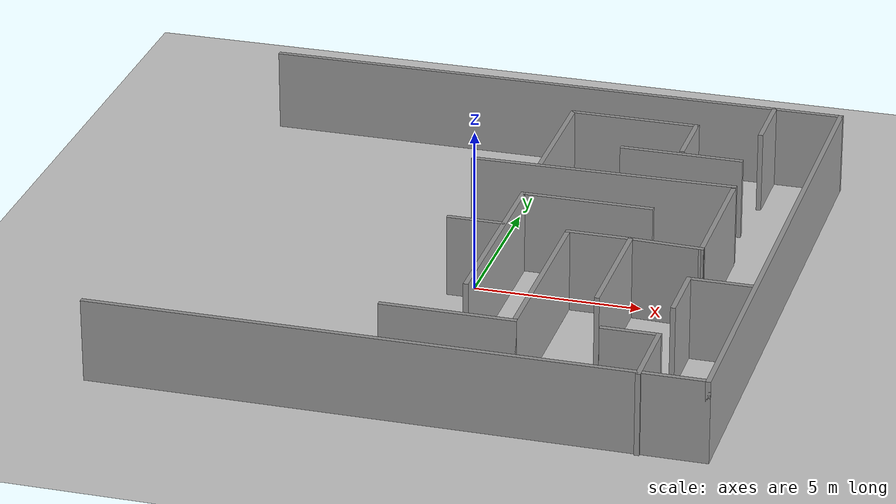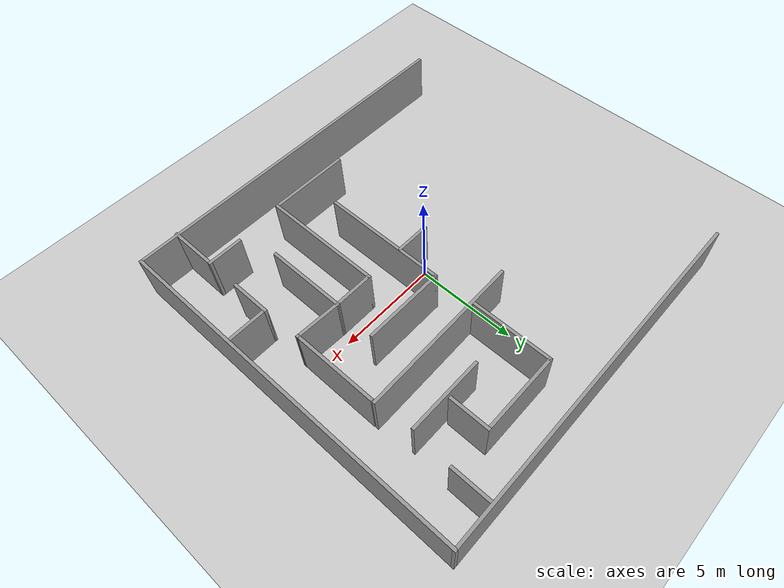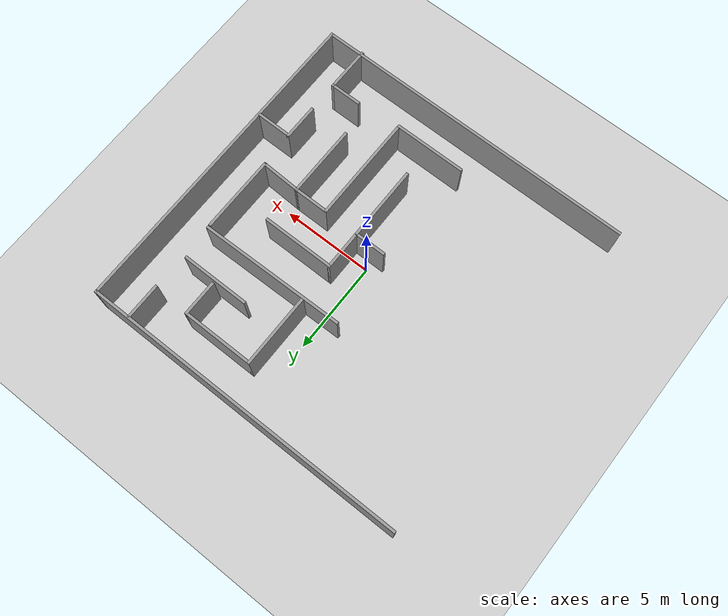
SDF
<sdf version="1.4">
 <world name="default">
  <model name="ground_plane">
   <static>1</static>
   <link name="link">
    <collision name="collision">
     <geometry><plane><normal>0 0 1</normal><size>100 100</size></plane></geometry>
     <surface><friction><ode><mu>100</mu><mu2>50</mu2></ode></friction></surface>
    </collision>
    <visual name="visual">
     <cast_shadows>0</cast_shadows>
     <geometry><plane><normal>0 0 1</normal><size>100 100</size></plane></geometry>
     <material>
      <script><uri>file://media/materials/scripts/gazebo.material</uri><name>Gazebo/Grey</name></script>
     </material>
    </visual>
   </link>
  </model>
  <model name="myMaze_map">
   <link name="Wall_20">
    <pose>-0.135582 -8.3101 0 0 -0 0</pose>
    <visual name="Wall_20_Visual">
     <pose>0 0 1.25 0 -0 0</pose>
     <geometry><box><size>18 0.15 2.5</size></box></geometry>
     <material>
      <script><uri>file://media/materials/scripts/gazebo.material</uri><name>Gazebo/Grey</name></script>
      <ambient>1 1 1 1</ambient>
      <diffuse>0.7 0.7 0.7 1</diffuse>
      <specular>0.01 0.01 0.01 1</specular>
      <emissive>0 0 0 1</emissive>
     </material>
    </visual>
    <collision name="Wall_20_Collision">
     <pose>0 0 1.25 0 -0 0</pose>
     <geometry><box><size>18 0.15 2.5</size></box></geometry>
     <surface>
      <friction>
       <ode><mu>1</mu><mu2>1</mu2><fdir1>0 0 0</fdir1><slip1>0</slip1><slip2>0</slip2></ode>
       <torsional>
        <coefficient>1</coefficient>
        <patch_radius>0</patch_radius>
        <surface_radius>0</surface_radius>
        <use_patch_radius>1</use_patch_radius>
        <ode><slip>0</slip></ode>
       </torsional>
      </friction>
      <bounce><restitution_coefficient>0</restitution_coefficient><threshold>1e+06</threshold></bounce>
      <contact>
       <collide_without_contact>0</collide_without_contact>
       <collide_without_contact_bitmask>1</collide_without_contact_bitmask>
       <collide_bitmask>1</collide_bitmask>
       <ode>
        <soft_cfm>0</soft_cfm>
        <soft_erp>0.2</soft_erp>
        <kp>1e+13</kp>
        <kd>1</kd>
        <max_vel>0.01</max_vel>
        <min_depth>0</min_depth>
       </ode>
       <bullet>
        <split_impulse>1</split_impulse>
        <split_impulse_penetration_threshold>-0.01</split_impulse_penetration_threshold>
        <soft_cfm>0</soft_cfm>
        <soft_erp>0.2</soft_erp>
        <kp>1e+13</kp>
        <kd>1</kd>
       </bullet>
      </contact>
     </surface>
    </collision>
   </link>
   <link name="Wall_21">
    <pose>8.78942 0.614904 0 0 -0 1.5708</pose>
    <visual name="Wall_21_Visual">
     <pose>0 0 1.25 0 -0 0</pose>
     <geometry><box><size>18 0.15 2.5</size></box></geometry>
     <material>
      <script><uri>file://media/materials/scripts/gazebo.material</uri><name>Gazebo/Grey</name></script>
      <ambient>1 1 1 1</ambient>
      <diffuse>0.7 0.7 0.7 1</diffuse>
      <specular>0.01 0.01 0.01 1</specular>
      <emissive>0 0 0 1</emissive>
     </material>
    </visual>
    <collision name="Wall_21_Collision">
     <pose>0 0 1.25 0 -0 0</pose>
     <geometry><box><size>18 0.15 2.5</size></box></geometry>
     <surface>
      <friction>
       <ode><mu>1</mu><mu2>1</mu2><fdir1>0 0 0</fdir1><slip1>0</slip1><slip2>0</slip2></ode>
       <torsional>
        <coefficient>1</coefficient>
        <patch_radius>0</patch_radius>
        <surface_radius>0</surface_radius>
        <use_patch_radius>1</use_patch_radius>
        <ode><slip>0</slip></ode>
       </torsional>
      </friction>
      <bounce><restitution_coefficient>0</restitution_coefficient><threshold>1e+06</threshold></bounce>
      <contact>
       <collide_without_contact>0</collide_without_contact>
       <collide_without_contact_bitmask>1</collide_without_contact_bitmask>
       <collide_bitmask>1</collide_bitmask>
       <ode>
        <soft_cfm>0</soft_cfm>
        <soft_erp>0.2</soft_erp>
        <kp>1e+13</kp>
        <kd>1</kd>
        <max_vel>0.01</max_vel>
        <min_depth>0</min_depth>
       </ode>
       <bullet>
        <split_impulse>1</split_impulse>
        <split_impulse_penetration_threshold>-0.01</split_impulse_penetration_threshold>
        <soft_cfm>0</soft_cfm>
        <soft_erp>0.2</soft_erp>
        <kp>1e+13</kp>
        <kd>1</kd>
       </bullet>
      </contact>
     </surface>
    </collision>
   </link>
   <link name="Wall_22">
    <pose>-0.135582 9.5399 0 0 -0 3.14159</pose>
    <visual name="Wall_22_Visual">
     <pose>0 0 1.25 0 -0 0</pose>
     <geometry><box><size>18 0.15 2.5</size></box></geometry>
     <material>
      <script><uri>file://media/materials/scripts/gazebo.material</uri><name>Gazebo/Grey</name></script>
      <ambient>1 1 1 1</ambient>
      <diffuse>0.7 0.7 0.7 1</diffuse>
      <specular>0.01 0.01 0.01 1</specular>
      <emissive>0 0 0 1</emissive>
     </material>
    </visual>
    <collision name="Wall_22_Collision">
     <pose>0 0 1.25 0 -0 0</pose>
     <geometry><box><size>18 0.15 2.5</size></box></geometry>
     <surface>
      <friction>
       <ode><mu>1</mu><mu2>1</mu2><fdir1>0 0 0</fdir1><slip1>0</slip1><slip2>0</slip2></ode>
       <torsional>
        <coefficient>1</coefficient>
        <patch_radius>0</patch_radius>
        <surface_radius>0</surface_radius>
        <use_patch_radius>1</use_patch_radius>
        <ode><slip>0</slip></ode>
       </torsional>
      </friction>
      <bounce><restitution_coefficient>0</restitution_coefficient><threshold>1e+06</threshold></bounce>
      <contact>
       <collide_without_contact>0</collide_without_contact>
       <collide_without_contact_bitmask>1</collide_without_contact_bitmask>
       <collide_bitmask>1</collide_bitmask>
       <ode>
        <soft_cfm>0</soft_cfm>
        <soft_erp>0.2</soft_erp>
        <kp>1e+13</kp>
        <kd>1</kd>
        <max_vel>0.01</max_vel>
        <min_depth>0</min_depth>
       </ode>
       <bullet>
        <split_impulse>1</split_impulse>
        <split_impulse_penetration_threshold>-0.01</split_impulse_penetration_threshold>
        <soft_cfm>0</soft_cfm>
        <soft_erp>0.2</soft_erp>
        <kp>1e+13</kp>
        <kd>1</kd>
       </bullet>
      </contact>
     </surface>
    </collision>
   </link>
   <link name="Wall_30">
    <pose>0.896581 -6.26071 0 0 -0 0</pose>
    <visual name="Wall_30_Visual">
     <pose>0 0 1.25 0 -0 0</pose>
     <geometry><box><size>4 0.15 2.5</size></box></geometry>
     <material>
      <script><uri>file://media/materials/scripts/gazebo.material</uri><name>Gazebo/Grey</name></script>
      <ambient>1 1 1 1</ambient>
      <diffuse>0.7 0.7 0.7 1</diffuse>
      <specular>0.01 0.01 0.01 1</specular>
      <emissive>0 0 0 1</emissive>
     </material>
    </visual>
    <collision name="Wall_30_Collision">
     <pose>0 0 1.25 0 -0 0</pose>
     <geometry><box><size>4 0.15 2.5</size></box></geometry>
     <surface>
      <friction>
       <ode><mu>1</mu><mu2>1</mu2><fdir1>0 0 0</fdir1><slip1>0</slip1><slip2>0</slip2></ode>
       <torsional>
        <coefficient>1</coefficient>
        <patch_radius>0</patch_radius>
        <surface_radius>0</surface_radius>
        <use_patch_radius>1</use_patch_radius>
        <ode><slip>0</slip></ode>
       </torsional>
      </friction>
      <bounce><restitution_coefficient>0</restitution_coefficient><threshold>1e+06</threshold></bounce>
      <contact>
       <collide_without_contact>0</collide_without_contact>
       <collide_without_contact_bitmask>1</collide_without_contact_bitmask>
       <collide_bitmask>1</collide_bitmask>
       <ode>
        <soft_cfm>0</soft_cfm>
        <soft_erp>0.2</soft_erp>
        <kp>1e+13</kp>
        <kd>1</kd>
        <max_vel>0.01</max_vel>
        <min_depth>0</min_depth>
       </ode>
       <bullet>
        <split_impulse>1</split_impulse>
        <split_impulse_penetration_threshold>-0.01</split_impulse_penetration_threshold>
        <soft_cfm>0</soft_cfm>
        <soft_erp>0.2</soft_erp>
        <kp>1e+13</kp>
        <kd>1</kd>
       </bullet>
      </contact>
     </surface>
    </collision>
   </link>
   <link name="Wall_31">
    <pose>2.82158 -3.33571 0 0 -0 1.5708</pose>
    <visual name="Wall_31_Visual">
     <pose>0 0 1.25 0 -0 0</pose>
     <geometry><box><size>6 0.15 2.5</size></box></geometry>
     <material>
      <script><uri>file://media/materials/scripts/gazebo.material</uri><name>Gazebo/Grey</name></script>
      <ambient>1 1 1 1</ambient>
      <diffuse>0.7 0.7 0.7 1</diffuse>
      <specular>0.01 0.01 0.01 1</specular>
      <emissive>0 0 0 1</emissive>
     </material>
    </visual>
    <collision name="Wall_31_Collision">
     <pose>0 0 1.25 0 -0 0</pose>
     <geometry><box><size>6 0.15 2.5</size></box></geometry>
     <surface>
      <friction>
       <ode><mu>1</mu><mu2>1</mu2><fdir1>0 0 0</fdir1><slip1>0</slip1><slip2>0</slip2></ode>
       <torsional>
        <coefficient>1</coefficient>
        <patch_radius>0</patch_radius>
        <surface_radius>0</surface_radius>
        <use_patch_radius>1</use_patch_radius>
        <ode><slip>0</slip></ode>
       </torsional>
      </friction>
      <bounce><restitution_coefficient>0</restitution_coefficient><threshold>1e+06</threshold></bounce>
      <contact>
       <collide_without_contact>0</collide_without_contact>
       <collide_without_contact_bitmask>1</collide_without_contact_bitmask>
       <collide_bitmask>1</collide_bitmask>
       <ode>
        <soft_cfm>0</soft_cfm>
        <soft_erp>0.2</soft_erp>
        <kp>1e+13</kp>
        <kd>1</kd>
        <max_vel>0.01</max_vel>
        <min_depth>0</min_depth>
       </ode>
       <bullet>
        <split_impulse>1</split_impulse>
        <split_impulse_penetration_threshold>-0.01</split_impulse_penetration_threshold>
        <soft_cfm>0</soft_cfm>
        <soft_erp>0.2</soft_erp>
        <kp>1e+13</kp>
        <kd>1</kd>
       </bullet>
      </contact>
     </surface>
    </collision>
   </link>
   <link name="Wall_32">
    <pose>3.74658 -0.410709 0 0 -0 0</pose>
    <visual name="Wall_32_Visual">
     <pose>0 0 1.25 0 -0 0</pose>
     <geometry><box><size>2 0.15 2.5</size></box></geometry>
     <material>
      <script><uri>file://media/materials/scripts/gazebo.material</uri><name>Gazebo/Grey</name></script>
      <ambient>1 1 1 1</ambient>
      <diffuse>0.7 0.7 0.7 1</diffuse>
      <specular>0.01 0.01 0.01 1</specular>
      <emissive>0 0 0 1</emissive>
     </material>
    </visual>
    <collision name="Wall_32_Collision">
     <pose>0 0 1.25 0 -0 0</pose>
     <geometry><box><size>2 0.15 2.5</size></box></geometry>
     <surface>
      <friction>
       <ode><mu>1</mu><mu2>1</mu2><fdir1>0 0 0</fdir1><slip1>0</slip1><slip2>0</slip2></ode>
       <torsional>
        <coefficient>1</coefficient>
        <patch_radius>0</patch_radius>
        <surface_radius>0</surface_radius>
        <use_patch_radius>1</use_patch_radius>
        <ode><slip>0</slip></ode>
       </torsional>
      </friction>
      <bounce><restitution_coefficient>0</restitution_coefficient><threshold>1e+06</threshold></bounce>
      <contact>
       <collide_without_contact>0</collide_without_contact>
       <collide_without_contact_bitmask>1</collide_without_contact_bitmask>
       <collide_bitmask>1</collide_bitmask>
       <ode>
        <soft_cfm>0</soft_cfm>
        <soft_erp>0.2</soft_erp>
        <kp>1e+13</kp>
        <kd>1</kd>
        <max_vel>0.01</max_vel>
        <min_depth>0</min_depth>
       </ode>
       <bullet>
        <split_impulse>1</split_impulse>
        <split_impulse_penetration_threshold>-0.01</split_impulse_penetration_threshold>
        <soft_cfm>0</soft_cfm>
        <soft_erp>0.2</soft_erp>
        <kp>1e+13</kp>
        <kd>1</kd>
       </bullet>
      </contact>
     </surface>
    </collision>
   </link>
   <link name="Wall_33">
    <pose>4.67158 -2.33571 0 0 0 -1.5708</pose>
    <visual name="Wall_33_Visual">
     <pose>0 0 1.25 0 -0 0</pose>
     <geometry><box><size>4 0.15 2.5</size></box></geometry>
     <material>
      <script><uri>file://media/materials/scripts/gazebo.material</uri><name>Gazebo/Grey</name></script>
      <ambient>1 1 1 1</ambient>
      <diffuse>0.7 0.7 0.7 1</diffuse>
      <specular>0.01 0.01 0.01 1</specular>
      <emissive>0 0 0 1</emissive>
     </material>
    </visual>
    <collision name="Wall_33_Collision">
     <pose>0 0 1.25 0 -0 0</pose>
     <geometry><box><size>4 0.15 2.5</size></box></geometry>
     <surface>
      <friction>
       <ode><mu>1</mu><mu2>1</mu2><fdir1>0 0 0</fdir1><slip1>0</slip1><slip2>0</slip2></ode>
       <torsional>
        <coefficient>1</coefficient>
        <patch_radius>0</patch_radius>
        <surface_radius>0</surface_radius>
        <use_patch_radius>1</use_patch_radius>
        <ode><slip>0</slip></ode>
       </torsional>
      </friction>
      <bounce><restitution_coefficient>0</restitution_coefficient><threshold>1e+06</threshold></bounce>
      <contact>
       <collide_without_contact>0</collide_without_contact>
       <collide_without_contact_bitmask>1</collide_without_contact_bitmask>
       <collide_bitmask>1</collide_bitmask>
       <ode>
        <soft_cfm>0</soft_cfm>
        <soft_erp>0.2</soft_erp>
        <kp>1e+13</kp>
        <kd>1</kd>
        <max_vel>0.01</max_vel>
        <min_depth>0</min_depth>
       </ode>
       <bullet>
        <split_impulse>1</split_impulse>
        <split_impulse_penetration_threshold>-0.01</split_impulse_penetration_threshold>
        <soft_cfm>0</soft_cfm>
        <soft_erp>0.2</soft_erp>
        <kp>1e+13</kp>
        <kd>1</kd>
       </bullet>
      </contact>
     </surface>
    </collision>
   </link>
   <link name="Wall_37">
    <pose>6.86042 -7.20036 0 0 -0 1.5708</pose>
    <visual name="Wall_37_Visual">
     <pose>0 0 1.25 0 -0 0</pose>
     <geometry><box><size>2.5 0.15 2.5</size></box></geometry>
     <material>
      <script><uri>file://media/materials/scripts/gazebo.material</uri><name>Gazebo/Grey</name></script>
      <ambient>1 1 1 1</ambient>
      <diffuse>0.7 0.7 0.7 1</diffuse>
      <specular>0.01 0.01 0.01 1</specular>
      <emissive>0 0 0 1</emissive>
     </material>
    </visual>
    <collision name="Wall_37_Collision">
     <pose>0 0 1.25 0 -0 0</pose>
     <geometry><box><size>2.5 0.15 2.5</size></box></geometry>
     <surface>
      <friction>
       <ode><mu>1</mu><mu2>1</mu2><fdir1>0 0 0</fdir1><slip1>0</slip1><slip2>0</slip2></ode>
       <torsional>
        <coefficient>1</coefficient>
        <patch_radius>0</patch_radius>
        <surface_radius>0</surface_radius>
        <use_patch_radius>1</use_patch_radius>
        <ode><slip>0</slip></ode>
       </torsional>
      </friction>
      <bounce><restitution_coefficient>0</restitution_coefficient><threshold>1e+06</threshold></bounce>
      <contact>
       <collide_without_contact>0</collide_without_contact>
       <collide_without_contact_bitmask>1</collide_without_contact_bitmask>
       <collide_bitmask>1</collide_bitmask>
       <ode>
        <soft_cfm>0</soft_cfm>
        <soft_erp>0.2</soft_erp>
        <kp>1e+13</kp>
        <kd>1</kd>
        <max_vel>0.01</max_vel>
        <min_depth>0</min_depth>
       </ode>
       <bullet>
        <split_impulse>1</split_impulse>
        <split_impulse_penetration_threshold>-0.01</split_impulse_penetration_threshold>
        <soft_cfm>0</soft_cfm>
        <soft_erp>0.2</soft_erp>
        <kp>1e+13</kp>
        <kd>1</kd>
       </bullet>
      </contact>
     </surface>
    </collision>
   </link>
   <link name="Wall_38">
    <pose>6.06042 -6.02536 0 0 -0 3.14159</pose>
    <visual name="Wall_38_Visual">
     <pose>0 0 1.25 0 -0 0</pose>
     <geometry><box><size>1.75 0.15 2.5</size></box></geometry>
     <material>
      <script><uri>file://media/materials/scripts/gazebo.material</uri><name>Gazebo/Grey</name></script>
      <ambient>1 1 1 1</ambient>
      <diffuse>0.7 0.7 0.7 1</diffuse>
      <specular>0.01 0.01 0.01 1</specular>
      <emissive>0 0 0 1</emissive>
     </material>
    </visual>
    <collision name="Wall_38_Collision">
     <pose>0 0 1.25 0 -0 0</pose>
     <geometry><box><size>1.75 0.15 2.5</size></box></geometry>
     <surface>
      <friction>
       <ode><mu>1</mu><mu2>1</mu2><fdir1>0 0 0</fdir1><slip1>0</slip1><slip2>0</slip2></ode>
       <torsional>
        <coefficient>1</coefficient>
        <patch_radius>0</patch_radius>
        <surface_radius>0</surface_radius>
        <use_patch_radius>1</use_patch_radius>
        <ode><slip>0</slip></ode>
       </torsional>
      </friction>
      <bounce><restitution_coefficient>0</restitution_coefficient><threshold>1e+06</threshold></bounce>
      <contact>
       <collide_without_contact>0</collide_without_contact>
       <collide_without_contact_bitmask>1</collide_without_contact_bitmask>
       <collide_bitmask>1</collide_bitmask>
       <ode>
        <soft_cfm>0</soft_cfm>
        <soft_erp>0.2</soft_erp>
        <kp>1e+13</kp>
        <kd>1</kd>
        <max_vel>0.01</max_vel>
        <min_depth>0</min_depth>
       </ode>
       <bullet>
        <split_impulse>1</split_impulse>
        <split_impulse_penetration_threshold>-0.01</split_impulse_penetration_threshold>
        <soft_cfm>0</soft_cfm>
        <soft_erp>0.2</soft_erp>
        <kp>1e+13</kp>
        <kd>1</kd>
       </bullet>
      </contact>
     </surface>
    </collision>
   </link>
   <link name="Wall_40">
    <pose>6.86042 -3.36434 0 0 -0 1.5708</pose>
    <visual name="Wall_40_Visual">
     <pose>0 0 1.25 0 -0 0</pose>
     <geometry><box><size>2 0.15 2.5</size></box></geometry>
     <material>
      <script><uri>file://media/materials/scripts/gazebo.material</uri><name>Gazebo/Grey</name></script>
      <ambient>1 1 1 1</ambient>
      <diffuse>0.7 0.7 0.7 1</diffuse>
      <specular>0.01 0.01 0.01 1</specular>
      <emissive>0 0 0 1</emissive>
     </material>
    </visual>
    <collision name="Wall_40_Collision">
     <pose>0 0 1.25 0 -0 0</pose>
     <geometry><box><size>2 0.15 2.5</size></box></geometry>
     <surface>
      <friction>
       <ode><mu>1</mu><mu2>1</mu2><fdir1>0 0 0</fdir1><slip1>0</slip1><slip2>0</slip2></ode>
       <torsional>
        <coefficient>1</coefficient>
        <patch_radius>0</patch_radius>
        <surface_radius>0</surface_radius>
        <use_patch_radius>1</use_patch_radius>
        <ode><slip>0</slip></ode>
       </torsional>
      </friction>
      <bounce><restitution_coefficient>0</restitution_coefficient><threshold>1e+06</threshold></bounce>
      <contact>
       <collide_without_contact>0</collide_without_contact>
       <collide_without_contact_bitmask>1</collide_without_contact_bitmask>
       <collide_bitmask>1</collide_bitmask>
       <ode>
        <soft_cfm>0</soft_cfm>
        <soft_erp>0.2</soft_erp>
        <kp>1e+13</kp>
        <kd>1</kd>
        <max_vel>0.01</max_vel>
        <min_depth>0</min_depth>
       </ode>
       <bullet>
        <split_impulse>1</split_impulse>
        <split_impulse_penetration_threshold>-0.01</split_impulse_penetration_threshold>
        <soft_cfm>0</soft_cfm>
        <soft_erp>0.2</soft_erp>
        <kp>1e+13</kp>
        <kd>1</kd>
       </bullet>
      </contact>
     </surface>
    </collision>
   </link>
   <link name="Wall_41">
    <pose>7.78542 -2.43934 0 0 -0 0</pose>
    <visual name="Wall_41_Visual">
     <pose>0 0 1.25 0 -0 0</pose>
     <geometry><box><size>2 0.15 2.5</size></box></geometry>
     <material>
      <script><uri>file://media/materials/scripts/gazebo.material</uri><name>Gazebo/Grey</name></script>
      <ambient>1 1 1 1</ambient>
      <diffuse>0.7 0.7 0.7 1</diffuse>
      <specular>0.01 0.01 0.01 1</specular>
      <emissive>0 0 0 1</emissive>
     </material>
    </visual>
    <collision name="Wall_41_Collision">
     <pose>0 0 1.25 0 -0 0</pose>
     <geometry><box><size>2 0.15 2.5</size></box></geometry>
     <surface>
      <friction>
       <ode><mu>1</mu><mu2>1</mu2><fdir1>0 0 0</fdir1><slip1>0</slip1><slip2>0</slip2></ode>
       <torsional>
        <coefficient>1</coefficient>
        <patch_radius>0</patch_radius>
        <surface_radius>0</surface_radius>
        <use_patch_radius>1</use_patch_radius>
        <ode><slip>0</slip></ode>
       </torsional>
      </friction>
      <bounce><restitution_coefficient>0</restitution_coefficient><threshold>1e+06</threshold></bounce>
      <contact>
       <collide_without_contact>0</collide_without_contact>
       <collide_without_contact_bitmask>1</collide_without_contact_bitmask>
       <collide_bitmask>1</collide_bitmask>
       <ode>
        <soft_cfm>0</soft_cfm>
        <soft_erp>0.2</soft_erp>
        <kp>1e+13</kp>
        <kd>1</kd>
        <max_vel>0.01</max_vel>
        <min_depth>0</min_depth>
       </ode>
       <bullet>
        <split_impulse>1</split_impulse>
        <split_impulse_penetration_threshold>-0.01</split_impulse_penetration_threshold>
        <soft_cfm>0</soft_cfm>
        <soft_erp>0.2</soft_erp>
        <kp>1e+13</kp>
        <kd>1</kd>
       </bullet>
      </contact>
     </surface>
    </collision>
   </link>
   <link name="Wall_57">
    <pose>2.82125 3.72644 0 0 -0 0.01538</pose>
    <visual name="Wall_57_Visual">
     <pose>0 0 1.25 0 -0 0</pose>
     <geometry><box><size>8.04139 0.15 2.5</size></box></geometry>
     <material>
      <script><uri>file://media/materials/scripts/gazebo.material</uri><name>Gazebo/Grey</name></script>
      <ambient>1 1 1 1</ambient>
      <diffuse>0.7 0.7 0.7 1</diffuse>
      <specular>0.01 0.01 0.01 1</specular>
      <emissive>0 0 0 1</emissive>
     </material>
    </visual>
    <collision name="Wall_57_Collision">
     <pose>0 0 1.25 0 -0 0</pose>
     <geometry><box><size>8.04139 0.15 2.5</size></box></geometry>
     <surface>
      <friction>
       <ode><mu>1</mu><mu2>1</mu2><fdir1>0 0 0</fdir1><slip1>0</slip1><slip2>0</slip2></ode>
       <torsional>
        <coefficient>1</coefficient>
        <patch_radius>0</patch_radius>
        <surface_radius>0</surface_radius>
        <use_patch_radius>1</use_patch_radius>
        <ode><slip>0</slip></ode>
       </torsional>
      </friction>
      <bounce><restitution_coefficient>0</restitution_coefficient><threshold>1e+06</threshold></bounce>
      <contact>
       <collide_without_contact>0</collide_without_contact>
       <collide_without_contact_bitmask>1</collide_without_contact_bitmask>
       <collide_bitmask>1</collide_bitmask>
       <ode>
        <soft_cfm>0</soft_cfm>
        <soft_erp>0.2</soft_erp>
        <kp>1e+13</kp>
        <kd>1</kd>
        <max_vel>0.01</max_vel>
        <min_depth>0</min_depth>
       </ode>
       <bullet>
        <split_impulse>1</split_impulse>
        <split_impulse_penetration_threshold>-0.01</split_impulse_penetration_threshold>
        <soft_cfm>0</soft_cfm>
        <soft_erp>0.2</soft_erp>
        <kp>1e+13</kp>
        <kd>1</kd>
       </bullet>
      </contact>
     </surface>
    </collision>
   </link>
   <link name="Wall_60">
    <pose>6.77951 1.5495 0 0 0 -1.5708</pose>
    <visual name="Wall_60_Visual">
     <pose>0 0 1.25 0 -0 0</pose>
     <geometry><box><size>4.25 0.15 2.5</size></box></geometry>
     <material>
      <script><uri>file://media/materials/scripts/gazebo.material</uri><name>Gazebo/Grey</name></script>
      <ambient>1 1 1 1</ambient>
      <diffuse>0.7 0.7 0.7 1</diffuse>
      <specular>0.01 0.01 0.01 1</specular>
      <emissive>0 0 0 1</emissive>
     </material>
    </visual>
    <collision name="Wall_60_Collision">
     <pose>0 0 1.25 0 -0 0</pose>
     <geometry><box><size>4.25 0.15 2.5</size></box></geometry>
     <surface>
      <friction>
       <ode><mu>1</mu><mu2>1</mu2><fdir1>0 0 0</fdir1><slip1>0</slip1><slip2>0</slip2></ode>
       <torsional>
        <coefficient>1</coefficient>
        <patch_radius>0</patch_radius>
        <surface_radius>0</surface_radius>
        <use_patch_radius>1</use_patch_radius>
        <ode><slip>0</slip></ode>
       </torsional>
      </friction>
      <bounce><restitution_coefficient>0</restitution_coefficient><threshold>1e+06</threshold></bounce>
      <contact>
       <collide_without_contact>0</collide_without_contact>
       <collide_without_contact_bitmask>1</collide_without_contact_bitmask>
       <collide_bitmask>1</collide_bitmask>
       <ode>
        <soft_cfm>0</soft_cfm>
        <soft_erp>0.2</soft_erp>
        <kp>1e+13</kp>
        <kd>1</kd>
        <max_vel>0.01</max_vel>
        <min_depth>0</min_depth>
       </ode>
       <bullet>
        <split_impulse>1</split_impulse>
        <split_impulse_penetration_threshold>-0.01</split_impulse_penetration_threshold>
        <soft_cfm>0</soft_cfm>
        <soft_erp>0.2</soft_erp>
        <kp>1e+13</kp>
        <kd>1</kd>
       </bullet>
      </contact>
     </surface>
    </collision>
   </link>
   <link name="Wall_61">
    <pose>5.72554 -0.455607 0 0 -0 3.09902</pose>
    <visual name="Wall_61_Visual">
     <pose>0 0 1.25 0 -0 0</pose>
     <geometry><box><size>2.25984 0.15 2.5</size></box></geometry>
     <material>
      <script><uri>file://media/materials/scripts/gazebo.material</uri><name>Gazebo/Grey</name></script>
      <ambient>1 1 1 1</ambient>
      <diffuse>0.7 0.7 0.7 1</diffuse>
      <specular>0.01 0.01 0.01 1</specular>
      <emissive>0 0 0 1</emissive>
     </material>
    </visual>
    <collision name="Wall_61_Collision">
     <pose>0 0 1.25 0 -0 0</pose>
     <geometry><box><size>2.25984 0.15 2.5</size></box></geometry>
     <surface>
      <friction>
       <ode><mu>1</mu><mu2>1</mu2><fdir1>0 0 0</fdir1><slip1>0</slip1><slip2>0</slip2></ode>
       <torsional>
        <coefficient>1</coefficient>
        <patch_radius>0</patch_radius>
        <surface_radius>0</surface_radius>
        <use_patch_radius>1</use_patch_radius>
        <ode><slip>0</slip></ode>
       </torsional>
      </friction>
      <bounce><restitution_coefficient>0</restitution_coefficient><threshold>1e+06</threshold></bounce>
      <contact>
       <collide_without_contact>0</collide_without_contact>
       <collide_without_contact_bitmask>1</collide_without_contact_bitmask>
       <collide_bitmask>1</collide_bitmask>
       <ode>
        <soft_cfm>0</soft_cfm>
        <soft_erp>0.2</soft_erp>
        <kp>1e+13</kp>
        <kd>1</kd>
        <max_vel>0.01</max_vel>
        <min_depth>0</min_depth>
       </ode>
       <bullet>
        <split_impulse>1</split_impulse>
        <split_impulse_penetration_threshold>-0.01</split_impulse_penetration_threshold>
        <soft_cfm>0</soft_cfm>
        <soft_erp>0.2</soft_erp>
        <kp>1e+13</kp>
        <kd>1</kd>
       </bullet>
      </contact>
     </surface>
    </collision>
   </link>
   <link name="Wall_71">
    <pose>0.872993 5.76723 0 0 -0 1.5708</pose>
    <visual name="Wall_71_Visual">
     <pose>0 0 1.25 0 -0 0</pose>
     <geometry><box><size>4 0.15 2.5</size></box></geometry>
     <material>
      <script><uri>file://media/materials/scripts/gazebo.material</uri><name>Gazebo/Grey</name></script>
      <ambient>1 1 1 1</ambient>
      <diffuse>0.7 0.7 0.7 1</diffuse>
      <specular>0.01 0.01 0.01 1</specular>
      <emissive>0 0 0 1</emissive>
     </material>
    </visual>
    <collision name="Wall_71_Collision">
     <pose>0 0 1.25 0 -0 0</pose>
     <geometry><box><size>4 0.15 2.5</size></box></geometry>
     <surface>
      <friction>
       <ode><mu>1</mu><mu2>1</mu2><fdir1>0 0 0</fdir1><slip1>0</slip1><slip2>0</slip2></ode>
       <torsional>
        <coefficient>1</coefficient>
        <patch_radius>0</patch_radius>
        <surface_radius>0</surface_radius>
        <use_patch_radius>1</use_patch_radius>
        <ode><slip>0</slip></ode>
       </torsional>
      </friction>
      <bounce><restitution_coefficient>0</restitution_coefficient><threshold>1e+06</threshold></bounce>
      <contact>
       <collide_without_contact>0</collide_without_contact>
       <collide_without_contact_bitmask>1</collide_without_contact_bitmask>
       <collide_bitmask>1</collide_bitmask>
       <ode>
        <soft_cfm>0</soft_cfm>
        <soft_erp>0.2</soft_erp>
        <kp>1e+13</kp>
        <kd>1</kd>
        <max_vel>0.01</max_vel>
        <min_depth>0</min_depth>
       </ode>
       <bullet>
        <split_impulse>1</split_impulse>
        <split_impulse_penetration_threshold>-0.01</split_impulse_penetration_threshold>
        <soft_cfm>0</soft_cfm>
        <soft_erp>0.2</soft_erp>
        <kp>1e+13</kp>
        <kd>1</kd>
       </bullet>
      </contact>
     </surface>
    </collision>
   </link>
   <link name="Wall_72">
    <pose>2.79799 7.69223 0 0 -0 0</pose>
    <visual name="Wall_72_Visual">
     <pose>0 0 1.25 0 -0 0</pose>
     <geometry><box><size>4 0.15 2.5</size></box></geometry>
     <material>
      <script><uri>file://media/materials/scripts/gazebo.material</uri><name>Gazebo/Grey</name></script>
      <ambient>1 1 1 1</ambient>
      <diffuse>0.7 0.7 0.7 1</diffuse>
      <specular>0.01 0.01 0.01 1</specular>
      <emissive>0 0 0 1</emissive>
     </material>
    </visual>
    <collision name="Wall_72_Collision">
     <pose>0 0 1.25 0 -0 0</pose>
     <geometry><box><size>4 0.15 2.5</size></box></geometry>
     <surface>
      <friction>
       <ode><mu>1</mu><mu2>1</mu2><fdir1>0 0 0</fdir1><slip1>0</slip1><slip2>0</slip2></ode>
       <torsional>
        <coefficient>1</coefficient>
        <patch_radius>0</patch_radius>
        <surface_radius>0</surface_radius>
        <use_patch_radius>1</use_patch_radius>
        <ode><slip>0</slip></ode>
       </torsional>
      </friction>
      <bounce><restitution_coefficient>0</restitution_coefficient><threshold>1e+06</threshold></bounce>
      <contact>
       <collide_without_contact>0</collide_without_contact>
       <collide_without_contact_bitmask>1</collide_without_contact_bitmask>
       <collide_bitmask>1</collide_bitmask>
       <ode>
        <soft_cfm>0</soft_cfm>
        <soft_erp>0.2</soft_erp>
        <kp>1e+13</kp>
        <kd>1</kd>
        <max_vel>0.01</max_vel>
        <min_depth>0</min_depth>
       </ode>
       <bullet>
        <split_impulse>1</split_impulse>
        <split_impulse_penetration_threshold>-0.01</split_impulse_penetration_threshold>
        <soft_cfm>0</soft_cfm>
        <soft_erp>0.2</soft_erp>
        <kp>1e+13</kp>
        <kd>1</kd>
       </bullet>
      </contact>
     </surface>
    </collision>
   </link>
   <link name="Wall_73">
    <pose>4.72299 6.76723 0 0 0 -1.5708</pose>
    <visual name="Wall_73_Visual">
     <pose>0 0 1.25 0 -0 0</pose>
     <geometry><box><size>2 0.15 2.5</size></box></geometry>
     <material>
      <script><uri>file://media/materials/scripts/gazebo.material</uri><name>Gazebo/Grey</name></script>
      <ambient>1 1 1 1</ambient>
      <diffuse>0.7 0.7 0.7 1</diffuse>
      <specular>0.01 0.01 0.01 1</specular>
      <emissive>0 0 0 1</emissive>
     </material>
    </visual>
    <collision name="Wall_73_Collision">
     <pose>0 0 1.25 0 -0 0</pose>
     <geometry><box><size>2 0.15 2.5</size></box></geometry>
     <surface>
      <friction>
       <ode><mu>1</mu><mu2>1</mu2><fdir1>0 0 0</fdir1><slip1>0</slip1><slip2>0</slip2></ode>
       <torsional>
        <coefficient>1</coefficient>
        <patch_radius>0</patch_radius>
        <surface_radius>0</surface_radius>
        <use_patch_radius>1</use_patch_radius>
        <ode><slip>0</slip></ode>
       </torsional>
      </friction>
      <bounce><restitution_coefficient>0</restitution_coefficient><threshold>1e+06</threshold></bounce>
      <contact>
       <collide_without_contact>0</collide_without_contact>
       <collide_without_contact_bitmask>1</collide_without_contact_bitmask>
       <collide_bitmask>1</collide_bitmask>
       <ode>
        <soft_cfm>0</soft_cfm>
        <soft_erp>0.2</soft_erp>
        <kp>1e+13</kp>
        <kd>1</kd>
        <max_vel>0.01</max_vel>
        <min_depth>0</min_depth>
       </ode>
       <bullet>
        <split_impulse>1</split_impulse>
        <split_impulse_penetration_threshold>-0.01</split_impulse_penetration_threshold>
        <soft_cfm>0</soft_cfm>
        <soft_erp>0.2</soft_erp>
        <kp>1e+13</kp>
        <kd>1</kd>
       </bullet>
      </contact>
     </surface>
    </collision>
   </link>
   <link name="Wall_75">
    <pose>4.7539 5.5995 0 0 -0 0</pose>
    <visual name="Wall_75_Visual">
     <pose>0 0 1.25 0 -0 0</pose>
     <geometry><box><size>3.75 0.15 2.5</size></box></geometry>
     <material>
      <script><uri>file://media/materials/scripts/gazebo.material</uri><name>Gazebo/Grey</name></script>
      <ambient>1 1 1 1</ambient>
      <diffuse>0.7 0.7 0.7 1</diffuse>
      <specular>0.01 0.01 0.01 1</specular>
      <emissive>0 0 0 1</emissive>
     </material>
    </visual>
    <collision name="Wall_75_Collision">
     <pose>0 0 1.25 0 -0 0</pose>
     <geometry><box><size>3.75 0.15 2.5</size></box></geometry>
     <surface>
      <friction>
       <ode><mu>1</mu><mu2>1</mu2><fdir1>0 0 0</fdir1><slip1>0</slip1><slip2>0</slip2></ode>
       <torsional>
        <coefficient>1</coefficient>
        <patch_radius>0</patch_radius>
        <surface_radius>0</surface_radius>
        <use_patch_radius>1</use_patch_radius>
        <ode><slip>0</slip></ode>
       </torsional>
      </friction>
      <bounce><restitution_coefficient>0</restitution_coefficient><threshold>1e+06</threshold></bounce>
      <contact>
       <collide_without_contact>0</collide_without_contact>
       <collide_without_contact_bitmask>1</collide_without_contact_bitmask>
       <collide_bitmask>1</collide_bitmask>
       <ode>
        <soft_cfm>0</soft_cfm>
        <soft_erp>0.2</soft_erp>
        <kp>1e+13</kp>
        <kd>1</kd>
        <max_vel>0.01</max_vel>
        <min_depth>0</min_depth>
       </ode>
       <bullet>
        <split_impulse>1</split_impulse>
        <split_impulse_penetration_threshold>-0.01</split_impulse_penetration_threshold>
        <soft_cfm>0</soft_cfm>
        <soft_erp>0.2</soft_erp>
        <kp>1e+13</kp>
        <kd>1</kd>
       </bullet>
      </contact>
     </surface>
    </collision>
   </link>
   <link name="Wall_77">
    <pose>6.73905 8.54055 0 0 0 -1.5708</pose>
    <visual name="Wall_77_Visual">
     <pose>0 0 1.25 0 -0 0</pose>
     <geometry><box><size>2 0.15 2.5</size></box></geometry>
     <material>
      <script><uri>file://media/materials/scripts/gazebo.material</uri><name>Gazebo/Grey</name></script>
      <ambient>1 1 1 1</ambient>
      <diffuse>0.7 0.7 0.7 1</diffuse>
      <specular>0.01 0.01 0.01 1</specular>
      <emissive>0 0 0 1</emissive>
     </material>
    </visual>
    <collision name="Wall_77_Collision">
     <pose>0 0 1.25 0 -0 0</pose>
     <geometry><box><size>2 0.15 2.5</size></box></geometry>
     <surface>
      <friction>
       <ode><mu>1</mu><mu2>1</mu2><fdir1>0 0 0</fdir1><slip1>0</slip1><slip2>0</slip2></ode>
       <torsional>
        <coefficient>1</coefficient>
        <patch_radius>0</patch_radius>
        <surface_radius>0</surface_radius>
        <use_patch_radius>1</use_patch_radius>
        <ode><slip>0</slip></ode>
       </torsional>
      </friction>
      <bounce><restitution_coefficient>0</restitution_coefficient><threshold>1e+06</threshold></bounce>
      <contact>
       <collide_without_contact>0</collide_without_contact>
       <collide_without_contact_bitmask>1</collide_without_contact_bitmask>
       <collide_bitmask>1</collide_bitmask>
       <ode>
        <soft_cfm>0</soft_cfm>
        <soft_erp>0.2</soft_erp>
        <kp>1e+13</kp>
        <kd>1</kd>
        <max_vel>0.01</max_vel>
        <min_depth>0</min_depth>
       </ode>
       <bullet>
        <split_impulse>1</split_impulse>
        <split_impulse_penetration_threshold>-0.01</split_impulse_penetration_threshold>
        <soft_cfm>0</soft_cfm>
        <soft_erp>0.2</soft_erp>
        <kp>1e+13</kp>
        <kd>1</kd>
       </bullet>
      </contact>
     </surface>
    </collision>
   </link>
   <link name="Wall_79">
    <pose>0.913449 -1.36071 0 0 -0 1.5708</pose>
    <visual name="Wall_79_Visual">
     <pose>0 0 1.25 0 -0 0</pose>
     <geometry><box><size>6.25 0.15 2.5</size></box></geometry>
     <material>
      <script><uri>file://media/materials/scripts/gazebo.material</uri><name>Gazebo/Grey</name></script>
      <ambient>1 1 1 1</ambient>
      <diffuse>0.7 0.7 0.7 1</diffuse>
      <specular>0.01 0.01 0.01 1</specular>
      <emissive>0 0 0 1</emissive>
     </material>
    </visual>
    <collision name="Wall_79_Collision">
     <pose>0 0 1.25 0 -0 0</pose>
     <geometry><box><size>6.25 0.15 2.5</size></box></geometry>
     <surface>
      <friction>
       <ode><mu>1</mu><mu2>1</mu2><fdir1>0 0 0</fdir1><slip1>0</slip1><slip2>0</slip2></ode>
       <torsional>
        <coefficient>1</coefficient>
        <patch_radius>0</patch_radius>
        <surface_radius>0</surface_radius>
        <use_patch_radius>1</use_patch_radius>
        <ode><slip>0</slip></ode>
       </torsional>
      </friction>
      <bounce><restitution_coefficient>0</restitution_coefficient><threshold>1e+06</threshold></bounce>
      <contact>
       <collide_without_contact>0</collide_without_contact>
       <collide_without_contact_bitmask>1</collide_without_contact_bitmask>
       <collide_bitmask>1</collide_bitmask>
       <ode>
        <soft_cfm>0</soft_cfm>
        <soft_erp>0.2</soft_erp>
        <kp>1e+13</kp>
        <kd>1</kd>
        <max_vel>0.01</max_vel>
        <min_depth>0</min_depth>
       </ode>
       <bullet>
        <split_impulse>1</split_impulse>
        <split_impulse_penetration_threshold>-0.01</split_impulse_penetration_threshold>
        <soft_cfm>0</soft_cfm>
        <soft_erp>0.2</soft_erp>
        <kp>1e+13</kp>
        <kd>1</kd>
       </bullet>
      </contact>
     </surface>
    </collision>
   </link>
   <link name="Wall_80">
    <pose>2.83845 1.68929 0 0 -0 0</pose>
    <visual name="Wall_80_Visual">
     <pose>0 0 1.25 0 -0 0</pose>
     <geometry><box><size>4 0.15 2.5</size></box></geometry>
     <material>
      <script><uri>file://media/materials/scripts/gazebo.material</uri><name>Gazebo/Grey</name></script>
      <ambient>1 1 1 1</ambient>
      <diffuse>0.7 0.7 0.7 1</diffuse>
      <specular>0.01 0.01 0.01 1</specular>
      <emissive>0 0 0 1</emissive>
     </material>
    </visual>
    <collision name="Wall_80_Collision">
     <pose>0 0 1.25 0 -0 0</pose>
     <geometry><box><size>4 0.15 2.5</size></box></geometry>
     <surface>
      <friction>
       <ode><mu>1</mu><mu2>1</mu2><fdir1>0 0 0</fdir1><slip1>0</slip1><slip2>0</slip2></ode>
       <torsional>
        <coefficient>1</coefficient>
        <patch_radius>0</patch_radius>
        <surface_radius>0</surface_radius>
        <use_patch_radius>1</use_patch_radius>
        <ode><slip>0</slip></ode>
       </torsional>
      </friction>
      <bounce><restitution_coefficient>0</restitution_coefficient><threshold>1e+06</threshold></bounce>
      <contact>
       <collide_without_contact>0</collide_without_contact>
       <collide_without_contact_bitmask>1</collide_without_contact_bitmask>
       <collide_bitmask>1</collide_bitmask>
       <ode>
        <soft_cfm>0</soft_cfm>
        <soft_erp>0.2</soft_erp>
        <kp>1e+13</kp>
        <kd>1</kd>
        <max_vel>0.01</max_vel>
        <min_depth>0</min_depth>
       </ode>
       <bullet>
        <split_impulse>1</split_impulse>
        <split_impulse_penetration_threshold>-0.01</split_impulse_penetration_threshold>
        <soft_cfm>0</soft_cfm>
        <soft_erp>0.2</soft_erp>
        <kp>1e+13</kp>
        <kd>1</kd>
       </bullet>
      </contact>
     </surface>
    </collision>
   </link>
   <link name="Wall_82">
    <pose>0.072993 -0.405607 0 0 -0 3.14159</pose>
    <visual name="Wall_82_Visual">
     <pose>0 0 1.25 0 -0 0</pose>
     <geometry><box><size>1.75 0.15 2.5</size></box></geometry>
     <material>
      <script><uri>file://media/materials/scripts/gazebo.material</uri><name>Gazebo/Grey</name></script>
      <ambient>1 1 1 1</ambient>
      <diffuse>0.7 0.7 0.7 1</diffuse>
      <specular>0.01 0.01 0.01 1</specular>
      <emissive>0 0 0 1</emissive>
     </material>
    </visual>
    <collision name="Wall_82_Collision">
     <pose>0 0 1.25 0 -0 0</pose>
     <geometry><box><size>1.75 0.15 2.5</size></box></geometry>
     <surface>
      <friction>
       <ode><mu>1</mu><mu2>1</mu2><fdir1>0 0 0</fdir1><slip1>0</slip1><slip2>0</slip2></ode>
       <torsional>
        <coefficient>1</coefficient>
        <patch_radius>0</patch_radius>
        <surface_radius>0</surface_radius>
        <use_patch_radius>1</use_patch_radius>
        <ode><slip>0</slip></ode>
       </torsional>
      </friction>
      <bounce><restitution_coefficient>0</restitution_coefficient><threshold>1e+06</threshold></bounce>
      <contact>
       <collide_without_contact>0</collide_without_contact>
       <collide_without_contact_bitmask>1</collide_without_contact_bitmask>
       <collide_bitmask>1</collide_bitmask>
       <ode>
        <soft_cfm>0</soft_cfm>
        <soft_erp>0.2</soft_erp>
        <kp>1e+13</kp>
        <kd>1</kd>
        <max_vel>0.01</max_vel>
        <min_depth>0</min_depth>
       </ode>
       <bullet>
        <split_impulse>1</split_impulse>
        <split_impulse_penetration_threshold>-0.01</split_impulse_penetration_threshold>
        <soft_cfm>0</soft_cfm>
        <soft_erp>0.2</soft_erp>
        <kp>1e+13</kp>
        <kd>1</kd>
       </bullet>
      </contact>
     </surface>
    </collision>
   </link>
   <static>1</static>
   <pose>0.106324 -0.12249 0 0 -0 0</pose>
  </model>
 </world>
</sdf>
